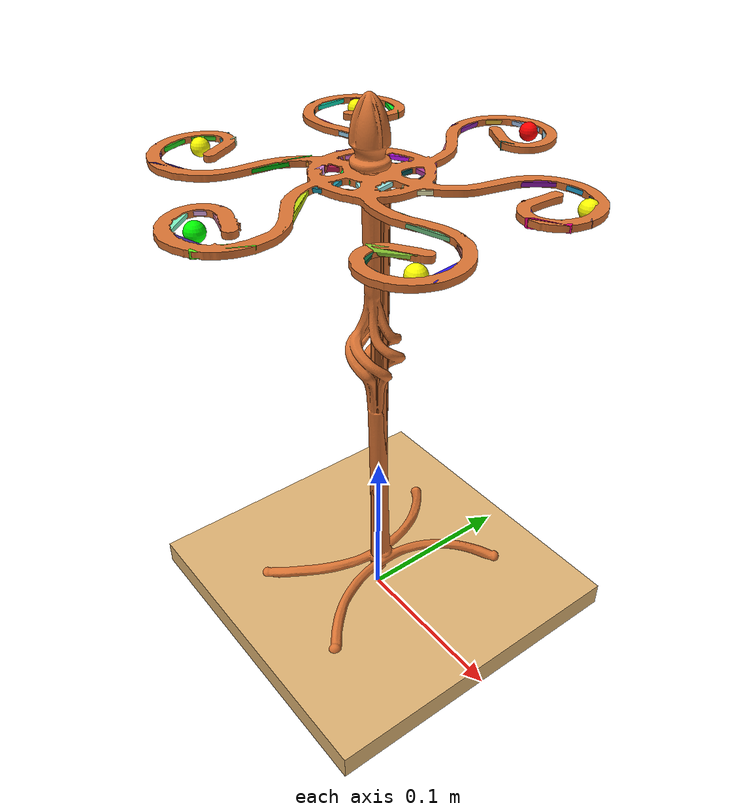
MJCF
<mujoco model="wine_glass_rack">
  <asset>
    <!-- STL files scaled by 1x (no rescaling) -->
    <!-- rack base -->
    <mesh name="base_mesh" file="meshes/wine_glass_spiral_rack_core.obj" scale="0.97 0.97 0.97"/>
    <!-- rack center -->
    <mesh name="wine_glass_spiral_rack_center" file="meshes/wine_glass_spiral_rack_center/wine_glass_spiral_rack_center.obj" scale="0.01 0.01 0.01"/>
    <mesh name="wine_glass_spiral_rack_center_0" file="meshes/wine_glass_spiral_rack_center/wine_glass_spiral_rack_center_0.obj" scale="0.01 0.01 0.01"/>
    <mesh name="wine_glass_spiral_rack_center_1" file="meshes/wine_glass_spiral_rack_center/wine_glass_spiral_rack_center_1.obj" scale="0.01 0.01 0.01"/>
    <mesh name="wine_glass_spiral_rack_center_2" file="meshes/wine_glass_spiral_rack_center/wine_glass_spiral_rack_center_2.obj" scale="0.01 0.01 0.01"/>
    <mesh name="wine_glass_spiral_rack_center_3" file="meshes/wine_glass_spiral_rack_center/wine_glass_spiral_rack_center_3.obj" scale="0.01 0.01 0.01"/>
    <mesh name="wine_glass_spiral_rack_center_4" file="meshes/wine_glass_spiral_rack_center/wine_glass_spiral_rack_center_4.obj" scale="0.01 0.01 0.01"/>
    <mesh name="wine_glass_spiral_rack_center_5" file="meshes/wine_glass_spiral_rack_center/wine_glass_spiral_rack_center_5.obj" scale="0.01 0.01 0.01"/>
    <mesh name="wine_glass_spiral_rack_center_6" file="meshes/wine_glass_spiral_rack_center/wine_glass_spiral_rack_center_6.obj" scale="0.01 0.01 0.01"/>
    <mesh name="wine_glass_spiral_rack_center_7" file="meshes/wine_glass_spiral_rack_center/wine_glass_spiral_rack_center_7.obj" scale="0.01 0.01 0.01"/>
    <mesh name="wine_glass_spiral_rack_center_8" file="meshes/wine_glass_spiral_rack_center/wine_glass_spiral_rack_center_8.obj" scale="0.01 0.01 0.01"/>
    <mesh name="wine_glass_spiral_rack_center_9" file="meshes/wine_glass_spiral_rack_center/wine_glass_spiral_rack_center_9.obj" scale="0.01 0.01 0.01"/>
    <mesh name="wine_glass_spiral_rack_center_10" file="meshes/wine_glass_spiral_rack_center/wine_glass_spiral_rack_center_10.obj" scale="0.01 0.01 0.01"/>
    <mesh name="wine_glass_spiral_rack_center_11" file="meshes/wine_glass_spiral_rack_center/wine_glass_spiral_rack_center_11.obj" scale="0.01 0.01 0.01"/>
    <mesh name="wine_glass_spiral_rack_center_12" file="meshes/wine_glass_spiral_rack_center/wine_glass_spiral_rack_center_12.obj" scale="0.01 0.01 0.01"/>
    <mesh name="wine_glass_spiral_rack_center_13" file="meshes/wine_glass_spiral_rack_center/wine_glass_spiral_rack_center_13.obj" scale="0.01 0.01 0.01"/>
    <mesh name="wine_glass_spiral_rack_center_14" file="meshes/wine_glass_spiral_rack_center/wine_glass_spiral_rack_center_14.obj" scale="0.01 0.01 0.01"/>
    <mesh name="wine_glass_spiral_rack_center_15" file="meshes/wine_glass_spiral_rack_center/wine_glass_spiral_rack_center_15.obj" scale="0.01 0.01 0.01"/>
    <mesh name="wine_glass_spiral_rack_center_16" file="meshes/wine_glass_spiral_rack_center/wine_glass_spiral_rack_center_16.obj" scale="0.01 0.01 0.01"/>
    <mesh name="wine_glass_spiral_rack_center_17" file="meshes/wine_glass_spiral_rack_center/wine_glass_spiral_rack_center_17.obj" scale="0.01 0.01 0.01"/>
    <mesh name="wine_glass_spiral_rack_center_18" file="meshes/wine_glass_spiral_rack_center/wine_glass_spiral_rack_center_18.obj" scale="0.01 0.01 0.01"/>
    <mesh name="wine_glass_spiral_rack_center_19" file="meshes/wine_glass_spiral_rack_center/wine_glass_spiral_rack_center_19.obj" scale="0.01 0.01 0.01"/>
    <mesh name="wine_glass_spiral_rack_center_20" file="meshes/wine_glass_spiral_rack_center/wine_glass_spiral_rack_center_20.obj" scale="0.01 0.01 0.01"/>
    <mesh name="wine_glass_spiral_rack_center_21" file="meshes/wine_glass_spiral_rack_center/wine_glass_spiral_rack_center_21.obj" scale="0.01 0.01 0.01"/>
    <mesh name="wine_glass_spiral_rack_center_22" file="meshes/wine_glass_spiral_rack_center/wine_glass_spiral_rack_center_22.obj" scale="0.01 0.01 0.01"/>
    <mesh name="wine_glass_spiral_rack_center_23" file="meshes/wine_glass_spiral_rack_center/wine_glass_spiral_rack_center_23.obj" scale="0.01 0.01 0.01"/>
    <mesh name="wine_glass_spiral_rack_center_24" file="meshes/wine_glass_spiral_rack_center/wine_glass_spiral_rack_center_24.obj" scale="0.01 0.01 0.01"/>
    <mesh name="wine_glass_spiral_rack_center_25" file="meshes/wine_glass_spiral_rack_center/wine_glass_spiral_rack_center_25.obj" scale="0.01 0.01 0.01"/>
    <mesh name="wine_glass_spiral_rack_center_26" file="meshes/wine_glass_spiral_rack_center/wine_glass_spiral_rack_center_26.obj" scale="0.01 0.01 0.01"/>
    <mesh name="wine_glass_spiral_rack_center_27" file="meshes/wine_glass_spiral_rack_center/wine_glass_spiral_rack_center_27.obj" scale="0.01 0.01 0.01"/>
    <mesh name="wine_glass_spiral_rack_center_28" file="meshes/wine_glass_spiral_rack_center/wine_glass_spiral_rack_center_28.obj" scale="0.01 0.01 0.01"/>
    <mesh name="wine_glass_spiral_rack_center_29" file="meshes/wine_glass_spiral_rack_center/wine_glass_spiral_rack_center_29.obj" scale="0.01 0.01 0.01"/>
    <mesh name="wine_glass_spiral_rack_center_30" file="meshes/wine_glass_spiral_rack_center/wine_glass_spiral_rack_center_30.obj" scale="0.01 0.01 0.01"/>
    <mesh name="wine_glass_spiral_rack_center_31" file="meshes/wine_glass_spiral_rack_center/wine_glass_spiral_rack_center_31.obj" scale="0.01 0.01 0.01"/>
    <mesh name="wine_glass_spiral_rack_center_32" file="meshes/wine_glass_spiral_rack_center/wine_glass_spiral_rack_center_32.obj" scale="0.01 0.01 0.01"/>
    <mesh name="wine_glass_spiral_rack_center_33" file="meshes/wine_glass_spiral_rack_center/wine_glass_spiral_rack_center_33.obj" scale="0.01 0.01 0.01"/>
    <mesh name="wine_glass_spiral_rack_center_34" file="meshes/wine_glass_spiral_rack_center/wine_glass_spiral_rack_center_34.obj" scale="0.01 0.01 0.01"/>
    <mesh name="wine_glass_spiral_rack_center_35" file="meshes/wine_glass_spiral_rack_center/wine_glass_spiral_rack_center_35.obj" scale="0.01 0.01 0.01"/>
    <mesh name="wine_glass_spiral_rack_center_36" file="meshes/wine_glass_spiral_rack_center/wine_glass_spiral_rack_center_36.obj" scale="0.01 0.01 0.01"/>
    <mesh name="wine_glass_spiral_rack_center_37" file="meshes/wine_glass_spiral_rack_center/wine_glass_spiral_rack_center_37.obj" scale="0.01 0.01 0.01"/>
    <mesh name="wine_glass_spiral_rack_center_38" file="meshes/wine_glass_spiral_rack_center/wine_glass_spiral_rack_center_38.obj" scale="0.01 0.01 0.01"/>
    <mesh name="wine_glass_spiral_rack_center_39" file="meshes/wine_glass_spiral_rack_center/wine_glass_spiral_rack_center_39.obj" scale="0.01 0.01 0.01"/>
    <mesh name="wine_glass_spiral_rack_center_40" file="meshes/wine_glass_spiral_rack_center/wine_glass_spiral_rack_center_40.obj" scale="0.01 0.01 0.01"/>
    <mesh name="wine_glass_spiral_rack_center_41" file="meshes/wine_glass_spiral_rack_center/wine_glass_spiral_rack_center_41.obj" scale="0.01 0.01 0.01"/>
    <mesh name="wine_glass_spiral_rack_center_42" file="meshes/wine_glass_spiral_rack_center/wine_glass_spiral_rack_center_42.obj" scale="0.01 0.01 0.01"/>
    <mesh name="wine_glass_spiral_rack_center_43" file="meshes/wine_glass_spiral_rack_center/wine_glass_spiral_rack_center_43.obj" scale="0.01 0.01 0.01"/>
    <mesh name="wine_glass_spiral_rack_center_44" file="meshes/wine_glass_spiral_rack_center/wine_glass_spiral_rack_center_44.obj" scale="0.01 0.01 0.01"/>
    <mesh name="wine_glass_spiral_rack_center_45" file="meshes/wine_glass_spiral_rack_center/wine_glass_spiral_rack_center_45.obj" scale="0.01 0.01 0.01"/>
    <mesh name="wine_glass_spiral_rack_center_46" file="meshes/wine_glass_spiral_rack_center/wine_glass_spiral_rack_center_46.obj" scale="0.01 0.01 0.01"/>
    <mesh name="wine_glass_spiral_rack_center_47" file="meshes/wine_glass_spiral_rack_center/wine_glass_spiral_rack_center_47.obj" scale="0.01 0.01 0.01"/>
    <mesh name="wine_glass_spiral_rack_center_48" file="meshes/wine_glass_spiral_rack_center/wine_glass_spiral_rack_center_48.obj" scale="0.01 0.01 0.01"/>
    <mesh name="wine_glass_spiral_rack_center_49" file="meshes/wine_glass_spiral_rack_center/wine_glass_spiral_rack_center_49.obj" scale="0.01 0.01 0.01"/>
    <mesh name="wine_glass_spiral_rack_center_50" file="meshes/wine_glass_spiral_rack_center/wine_glass_spiral_rack_center_50.obj" scale="0.01 0.01 0.01"/>
    <mesh name="wine_glass_spiral_rack_center_51" file="meshes/wine_glass_spiral_rack_center/wine_glass_spiral_rack_center_51.obj" scale="0.01 0.01 0.01"/>
    <mesh name="wine_glass_spiral_rack_center_52" file="meshes/wine_glass_spiral_rack_center/wine_glass_spiral_rack_center_52.obj" scale="0.01 0.01 0.01"/>
    <mesh name="wine_glass_spiral_rack_center_53" file="meshes/wine_glass_spiral_rack_center/wine_glass_spiral_rack_center_53.obj" scale="0.01 0.01 0.01"/>
    <mesh name="wine_glass_spiral_rack_center_54" file="meshes/wine_glass_spiral_rack_center/wine_glass_spiral_rack_center_54.obj" scale="0.01 0.01 0.01"/>
    <mesh name="wine_glass_spiral_rack_center_55" file="meshes/wine_glass_spiral_rack_center/wine_glass_spiral_rack_center_55.obj" scale="0.01 0.01 0.01"/>
    <mesh name="wine_glass_spiral_rack_center_56" file="meshes/wine_glass_spiral_rack_center/wine_glass_spiral_rack_center_56.obj" scale="0.01 0.01 0.01"/>
    <mesh name="wine_glass_spiral_rack_center_57" file="meshes/wine_glass_spiral_rack_center/wine_glass_spiral_rack_center_57.obj" scale="0.01 0.01 0.01"/>
    <mesh name="wine_glass_spiral_rack_center_58" file="meshes/wine_glass_spiral_rack_center/wine_glass_spiral_rack_center_58.obj" scale="0.01 0.01 0.01"/>
    <mesh name="wine_glass_spiral_rack_center_59" file="meshes/wine_glass_spiral_rack_center/wine_glass_spiral_rack_center_59.obj" scale="0.01 0.01 0.01"/>
    <mesh name="wine_glass_spiral_rack_center_60" file="meshes/wine_glass_spiral_rack_center/wine_glass_spiral_rack_center_60.obj" scale="0.01 0.01 0.01"/>
    <mesh name="wine_glass_spiral_rack_center_61" file="meshes/wine_glass_spiral_rack_center/wine_glass_spiral_rack_center_61.obj" scale="0.01 0.01 0.01"/>
    <mesh name="wine_glass_spiral_rack_center_62" file="meshes/wine_glass_spiral_rack_center/wine_glass_spiral_rack_center_62.obj" scale="0.01 0.01 0.01"/>
    <mesh name="wine_glass_spiral_rack_center_63" file="meshes/wine_glass_spiral_rack_center/wine_glass_spiral_rack_center_63.obj" scale="0.01 0.01 0.01"/>
    <mesh name="wine_glass_spiral_rack_center_64" file="meshes/wine_glass_spiral_rack_center/wine_glass_spiral_rack_center_64.obj" scale="0.01 0.01 0.01"/>
    <mesh name="wine_glass_spiral_rack_center_65" file="meshes/wine_glass_spiral_rack_center/wine_glass_spiral_rack_center_65.obj" scale="0.01 0.01 0.01"/>
    <mesh name="wine_glass_spiral_rack_center_66" file="meshes/wine_glass_spiral_rack_center/wine_glass_spiral_rack_center_66.obj" scale="0.01 0.01 0.01"/>
  </asset>
  <worldbody>
    <body>
    <!-- Base is placed at 0.0m height -->
    <body name="object" pos="0 0 0">
        <!-- base -->
        <body name="base" pos="0 0 0.0">
          <geom name="base_visual" type="mesh" pos="0 0 0.005" mesh="base_mesh" rgba="0.85 0.45 0.2 1" group="1" contype="0" conaffinity="0"/>
          <geom name="base_collision" type="box" pos="0 0 0.0075" size="0.1 0.1 0.0075" density="1000" rgba="0.87 0.7 0.45 1" group="0"/>
        </body>
        <!-- Center is placed at 0.27m (27cm) height -->
        <body name="center" pos="0 -0.005 0.282">
          <geom mesh="wine_glass_spiral_rack_center" group="1" contype="0" conaffinity="0" type="mesh" rgba="0.85 0.45 0.2 1"/>
          <geom mesh="wine_glass_spiral_rack_center_0" rgba="0.8925728899999805 0.22426359224605852 0.6465876229444013 1"  group="0" type="mesh"/>
          <geom mesh="wine_glass_spiral_rack_center_1" rgba="0.563824373768247 0.31326848932433893 0.2696090022678215 1"  group="0" type="mesh"/>
          <geom mesh="wine_glass_spiral_rack_center_2" rgba="0.2693413035235006 0.4473219167775049 0.4481135257984816 1"  group="0" type="mesh"/>
          <geom mesh="wine_glass_spiral_rack_center_3" rgba="0.41589189135813 0.7247092646962628 0.47977197456968335 1"  group="0" type="mesh"/>
          <geom mesh="wine_glass_spiral_rack_center_4" rgba="0.7574412127467622 0.8671529910961493 0.06249166184478361 1"  group="0" type="mesh"/>
          <geom mesh="wine_glass_spiral_rack_center_5" rgba="0.02810706199573898 0.933726216587625 0.17075529612765794 1"  group="0" type="mesh"/>
          <geom mesh="wine_glass_spiral_rack_center_6" rgba="0.5472542947396353 0.09746607880058511 0.6654954536175696 1"  group="0" type="mesh"/>
          <geom mesh="wine_glass_spiral_rack_center_7" rgba="0.17252111975065476 0.08537580465950134 0.9628981741798208 1"  group="0" type="mesh"/>
          <geom mesh="wine_glass_spiral_rack_center_8" rgba="0.5426556793281766 0.7943952874043113 0.196481522487976 1"  group="0" type="mesh"/>
          <geom mesh="wine_glass_spiral_rack_center_9" rgba="0.5731076728133042 0.13882029230171533 0.2901281249287494 1"  group="0" type="mesh"/>
          <geom mesh="wine_glass_spiral_rack_center_10" rgba="0.9015141785266471 0.29360678876672075 0.0030480629892083444 1"  group="0" type="mesh"/>
          <geom mesh="wine_glass_spiral_rack_center_11" rgba="0.3645138407000741 0.36411696534534255 0.06514030067294097 1"  group="0" type="mesh"/>
          <geom mesh="wine_glass_spiral_rack_center_12" rgba="0.6624679570285397 0.6598955628804926 0.6527800972817533 1"  group="0" type="mesh"/>
          <geom mesh="wine_glass_spiral_rack_center_13" rgba="0.043847256299164084 0.8382026283280729 0.689903103349682 1"  group="0" type="mesh"/>
          <geom mesh="wine_glass_spiral_rack_center_14" rgba="0.23675086792216637 0.3681739196363192 0.7226564493413321 1"  group="0" type="mesh"/>
          <geom mesh="wine_glass_spiral_rack_center_15" rgba="0.5827174349017273 0.22216723273634398 0.6110992140179832 1"  group="0" type="mesh"/>
          <geom mesh="wine_glass_spiral_rack_center_16" rgba="0.2061262642254731 0.06882031283635859 0.4518584855955724 1"  group="0" type="mesh"/>
          <geom mesh="wine_glass_spiral_rack_center_17" rgba="0.020370068091669746 0.686060019024754 0.05037521725343197 1"  group="0" type="mesh"/>
          <geom mesh="wine_glass_spiral_rack_center_18" rgba="0.2295389664276415 0.27765577349424786 0.8501025063066058 1"  group="0" type="mesh"/>
          <geom mesh="wine_glass_spiral_rack_center_19" rgba="0.08642005542000086 0.7240647471924383 0.9673722265979504 1"  group="0" type="mesh"/>
          <geom mesh="wine_glass_spiral_rack_center_20" rgba="0.018690593517052823 0.7176739896104836 0.46186552620103105 1"  group="0" type="mesh"/>
          <geom mesh="wine_glass_spiral_rack_center_21" rgba="0.12506302485859078 0.6395527493829003 0.8148516376197896 1"  group="0" type="mesh"/>
          <geom mesh="wine_glass_spiral_rack_center_22" rgba="0.9919034629436673 0.6239730838235426 0.19987963586197488 1"  group="0" type="mesh"/>
          <geom mesh="wine_glass_spiral_rack_center_23" rgba="0.6398732310721867 0.33481284912081455 0.560989476632651 1"  group="0" type="mesh"/>
          <geom mesh="wine_glass_spiral_rack_center_24" rgba="0.04955720674067421 0.37312880229239787 0.22965506955342174 1"  group="0" type="mesh"/>
          <geom mesh="wine_glass_spiral_rack_center_25" rgba="0.7417033312059753 0.09957898555780831 0.9482474370258972 1"  group="0" type="mesh"/>
          <geom mesh="wine_glass_spiral_rack_center_26" rgba="0.38344595197812703 0.9563889886910681 0.10617121338973357 1"  group="0" type="mesh"/>
          <geom mesh="wine_glass_spiral_rack_center_27" rgba="0.7175192495540174 0.3603783267256927 0.46290438769652764 1"  group="0" type="mesh"/>
          <geom mesh="wine_glass_spiral_rack_center_28" rgba="0.33063836074230935 0.9152978262484369 0.8658548793021938 1"  group="0" type="mesh"/>
          <geom mesh="wine_glass_spiral_rack_center_29" rgba="0.5073769281840687 0.15242463308728493 0.014101369585276191 1"  group="0" type="mesh"/>
          <geom mesh="wine_glass_spiral_rack_center_30" rgba="0.25618553655278 0.9090537304285533 0.17192170569275467 1"  group="0" type="mesh"/>
          <geom mesh="wine_glass_spiral_rack_center_31" rgba="0.7706131634119643 0.8872946816964032 0.6553313593156381 1"  group="0" type="mesh"/>
          <geom mesh="wine_glass_spiral_rack_center_32" rgba="0.9731067159946978 0.7704757753368251 0.2182028498798465 1"  group="0" type="mesh"/>
          <geom mesh="wine_glass_spiral_rack_center_33" rgba="0.4981134388387689 0.9615844865260234 0.7694328933920966 1"  group="0" type="mesh"/>
          <geom mesh="wine_glass_spiral_rack_center_34" rgba="0.8832230740386199 0.5274425891861372 0.6291264505413959 1"  group="0" type="mesh"/>
          <geom mesh="wine_glass_spiral_rack_center_35" rgba="0.2749287840421172 0.1694926033004841 0.5579099656046078 1"  group="0" type="mesh"/>
          <geom mesh="wine_glass_spiral_rack_center_36" rgba="0.7028909015115515 0.2340794778717623 0.5978272107073431 1"  group="0" type="mesh"/>
          <geom mesh="wine_glass_spiral_rack_center_37" rgba="0.4550534454655849 0.2306245609096671 0.879289709208907 1"  group="0" type="mesh"/>
          <geom mesh="wine_glass_spiral_rack_center_38" rgba="0.1437443568412904 0.8352100876833084 0.12012712519855184 1"  group="0" type="mesh"/>
          <geom mesh="wine_glass_spiral_rack_center_39" rgba="0.5563762733458237 0.16054785549776585 0.6877312710888113 1"  group="0" type="mesh"/>
          <geom mesh="wine_glass_spiral_rack_center_40" rgba="0.3058092897267888 0.7843641246867339 0.838794418597938 1"  group="0" type="mesh"/>
          <geom mesh="wine_glass_spiral_rack_center_41" rgba="0.9043708063329261 0.6912610189128822 0.9390081061179149 1"  group="0" type="mesh"/>
          <geom mesh="wine_glass_spiral_rack_center_42" rgba="0.9209395777757929 0.003914837362086754 0.47563826830723765 1"  group="0" type="mesh"/>
          <geom mesh="wine_glass_spiral_rack_center_43" rgba="0.9788419874959318 0.9681330733083853 0.7305604217940824 1"  group="0" type="mesh"/>
          <geom mesh="wine_glass_spiral_rack_center_44" rgba="0.9652085732320326 0.49188664724674525 0.9014729298988641 1"  group="0" type="mesh"/>
          <geom mesh="wine_glass_spiral_rack_center_45" rgba="0.2132444654288851 0.5018951162285462 0.42183271482047113 1"  group="0" type="mesh"/>
          <geom mesh="wine_glass_spiral_rack_center_46" rgba="0.6471317716235045 0.4513206603601633 0.5483668206826013 1"  group="0" type="mesh"/>
          <geom mesh="wine_glass_spiral_rack_center_47" rgba="0.010448210166075667 0.8559661730935837 0.2101317281898074 1"  group="0" type="mesh"/>
          <geom mesh="wine_glass_spiral_rack_center_48" rgba="0.008824627495384596 0.5435599971716017 0.8492713147893649 1"  group="0" type="mesh"/>
          <geom mesh="wine_glass_spiral_rack_center_49" rgba="0.5918531229222572 0.3762073766648819 0.17452018446392614 1"  group="0" type="mesh"/>
          <geom mesh="wine_glass_spiral_rack_center_50" rgba="0.0886105629299796 0.5551252927619319 0.6287620571726478 1"  group="0" type="mesh"/>
          <geom mesh="wine_glass_spiral_rack_center_51" rgba="0.610363848490246 0.9158083475718767 0.8960884935126908 1"  group="0" type="mesh"/>
          <geom mesh="wine_glass_spiral_rack_center_52" rgba="0.5220429147496116 0.2270520506477588 0.3557088059903104 1"  group="0" type="mesh"/>
          <geom mesh="wine_glass_spiral_rack_center_53" rgba="0.927392705522426 0.5917592328160064 0.977701884869032 1"  group="0" type="mesh"/>
          <geom mesh="wine_glass_spiral_rack_center_54" rgba="0.7633769970664123 0.8301031058881607 0.12309795080537356 1"  group="0" type="mesh"/>
          <geom mesh="wine_glass_spiral_rack_center_55" rgba="0.198467870822851 0.4856911928921178 0.10011333665673872 1"  group="0" type="mesh"/>
          <geom mesh="wine_glass_spiral_rack_center_56" rgba="0.37098574530804107 0.4695859366045141 0.23955939283106686 1"  group="0" type="mesh"/>
          <geom mesh="wine_glass_spiral_rack_center_57" rgba="0.708871864368367 0.09838035621398755 0.2974456530164138 1"  group="0" type="mesh"/>
          <geom mesh="wine_glass_spiral_rack_center_58" rgba="0.4436404929449227 0.5605558296211592 0.6073427549446664 1"  group="0" type="mesh"/>
          <geom mesh="wine_glass_spiral_rack_center_59" rgba="0.027205932611563344 0.32795852388642976 0.3346679696272291 1"  group="0" type="mesh"/>
          <geom mesh="wine_glass_spiral_rack_center_60" rgba="0.17255298484534298 0.7876372094554547 0.6161691096812496 1"  group="0" type="mesh"/>
          <geom mesh="wine_glass_spiral_rack_center_61" rgba="0.7683472105180391 0.07755920516106463 0.9885224158827272 1"  group="0" type="mesh"/>
          <geom mesh="wine_glass_spiral_rack_center_62" rgba="0.5970530596168153 0.8169825423832751 0.9340669388942975 1"  group="0" type="mesh"/>
          <geom mesh="wine_glass_spiral_rack_center_63" rgba="0.09235305919262704 0.05731435898268267 0.07184371413693447 1"  group="0" type="mesh"/>
          <geom mesh="wine_glass_spiral_rack_center_64" rgba="0.615693190455377 0.7401359724340149 0.8990202530528684 1"  group="0" type="mesh"/>
          <geom mesh="wine_glass_spiral_rack_center_65" rgba="0.7325932645178115 0.9196899455373401 0.2770922495339959 1"  group="0" type="mesh"/>
          <geom mesh="wine_glass_spiral_rack_center_66" rgba="0.24459202733126018 0.38648129490447747 0.5152807495418528 1"  group="0" type="mesh"/>
        </body>
        <!-- Connector from base (z=0) to center (z=0.27) -->
        <body name="connector" pos="0 0 0.01">
          <geom name="connector_1_visual" type="cylinder" pos="0 0 0.135" size="0.005 0.135" rgba="0.85 0.45 0.2 1" group="1" contype="0" conaffinity="0"/>
          <geom name="connector_1_collision" type="capsule" pos="0 0 0.135" size="0.005 0.125" rgba="0.85 0.45 0.2 1" group="0"/>
        </body>
    </body>
    <site name="rack_hole_1" pos="0.0000 0.1000 0.282" size="0.005" rgba="1 0 0 1"/>
    <site name="rack_hole_2" pos="0.0866 0.0500 0.282" size="0.005" rgba="1 1 0 1"/>
    <site name="rack_hole_3" pos="0.0866 -0.0500 0.282" size="0.005" rgba="1 1 0 1"/>
    <site name="rack_hole_4" pos="0.0000 -0.1000 0.282" size="0.005" rgba="0 1 0 1"/>
    <site name="rack_hole_5" pos="-0.0866 -0.0500 0.282" size="0.005" rgba="1 1 0 1"/>
    <site name="rack_hole_6" pos="-0.0866 0.0500 0.282" size="0.005" rgba="1 1 0 1"/>
  </body>
  </worldbody>
</mujoco>
